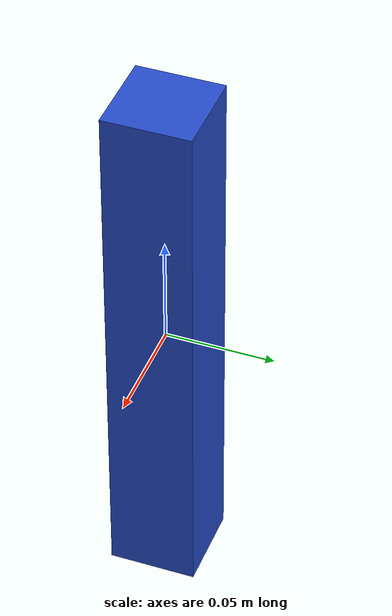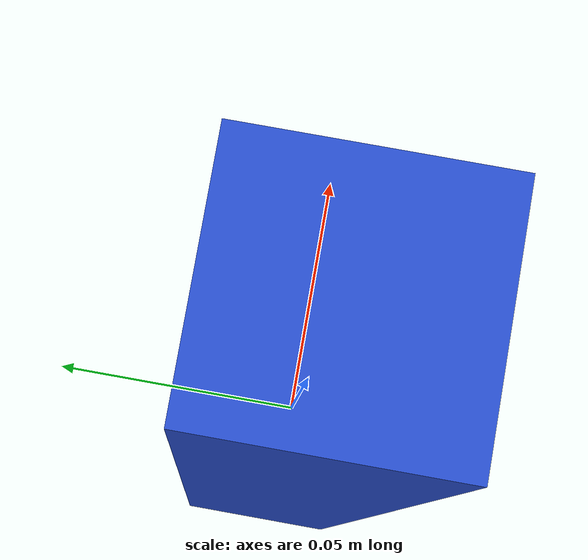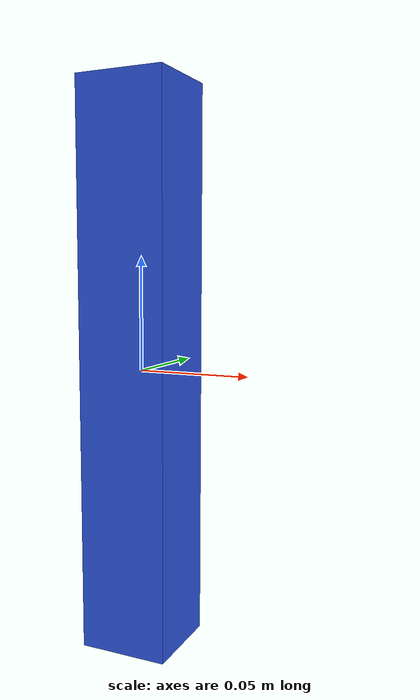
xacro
<?xml version="1.0"?>
<robot xmlns:xacro="http://www.ros.org/wiki/xacro" name="prisma">
    <xacro:property name="mass" value="0.1" />
    <xacro:property name="height" value="0.25" />
    <xacro:property name="width" value="0.04" />
    <xacro:property name="length" value="0.04" />
    <link name="prisma_footprint"></link>
    <link name="prisma">
        <inertial>
            <origin xyz="0 0 0" rpy="0 0 0"/>
            <mass value="${mass}"/>
            <inertia ixx="${(1/12)*mass*((width**2) + (height**2))}" ixy="0" ixz="0" iyy="${(1/12)*mass*((length**2) + (height**2))}" iyz="0" izz="${(1/2)*mass*((width**2) + (length**2))}" />
        </inertial>
        <visual>
            <geometry>
                <box size="${length} ${width} ${height}" />
            </geometry>
        </visual>
        <collision>
            <geometry>
                <box size="${length} ${width} ${height}" />
            </geometry>
        </collision>
    </link>
    <joint name="base_prisma" type="fixed">
        <parent link="prisma_footprint" />
        <child link="prisma" />
        <origin xyz="0 0 0" rpy="0 0 0" />
    </joint>
    <gazebo reference="prisma">
        <material>Gazebo/Blue</material>
        <dampingFactor>0.005</dampingFactor>
        <kp>1000000</kp>
        <kd>1.0</kd>
        <mu1>0.2</mu1>
        <mu2>0.2</mu2>
        <minDepth>0.01</minDepth>
    </gazebo>
</robot>
